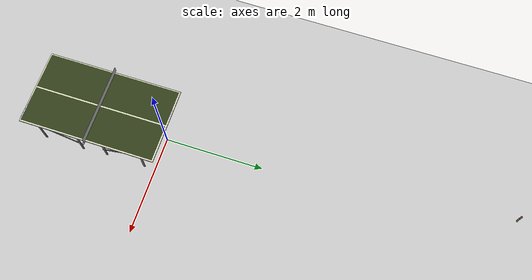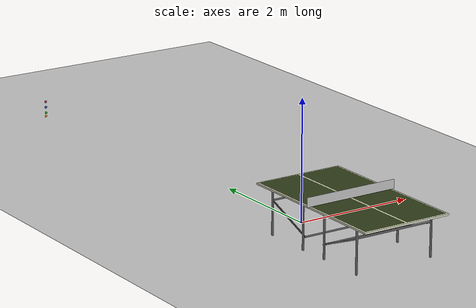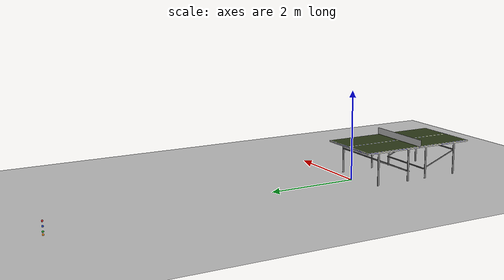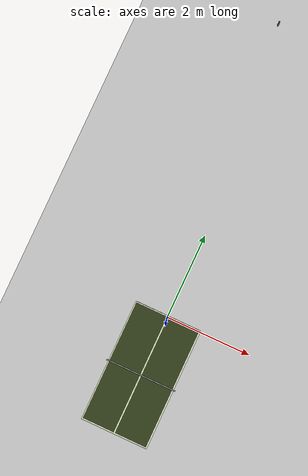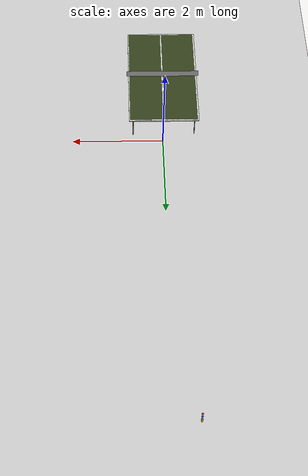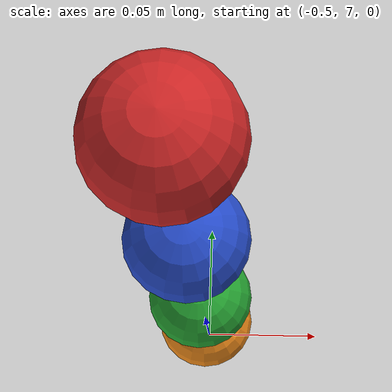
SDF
<?xml version="1.0" ?>
<sdf version="1.4">
  <world name="default">
    <include>
      <uri>model://ground_plane</uri>
    </include>
    <include>
      <uri>model://table</uri>
      <name>ping_pong_table</name>
      <pose>-0.677840 -2.340503 0.0 0 0 0</pose>
    </include>
    <include>
      <uri>model://ping_pong_ball</uri>
      <name>ping_pong_ball</name>
      <pose>-0.5 7.0 0.04 0 0 0</pose>
    </include>
    <include>
      <uri>model://bping_pong_ball</uri>
      <name>blue_ping_pong_ball</name>
      <pose>-0.5 7.0 0.2 0 0 0</pose>
    </include>
    <include>
      <uri>model://gping_pong_ball</uri>
      <name>green_ping_pong_ball</name>
      <pose>-0.5 7.0 0.1 0 0 0</pose>
    </include>
    <include>
      <uri>model://rping_pong_ball</uri>
      <name>red_ping_pong_ball</name>
      <pose>-0.5 7.0 0.3 0 0 0</pose>
    </include>
    <include>
      <uri>model://sun</uri>
      <name>user_spot_light_0</name>
      <pose>0 -2.0 3.77 0 0 0</pose>
    </include>
    <include>
      <uri>model://sun</uri>
      <name>user_spot_light_1</name>
      <pose>0 -0.6 3.77 0 0 0</pose>
    </include>
  </world>
</sdf>

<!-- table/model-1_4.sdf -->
<sdf version="1.4">
  <model name="Ping Pong Table">
    <static>True</static>

    <link name="table">
      <gravity>false</gravity>
       <visual name="visual1">
          <geometry>
            <mesh><uri>file:///home/carlos/.gazebo/models/table/table.dae</uri></mesh>
            <!-->Model taken from https://3dwarehouse.sketchup.com/model.html?id=b34982af1d6e18736b4393ff6e4e0f88 <\!-->
          </geometry>
        </visual>
        <collision name="collision1">
          <geometry>
            <box><size>1.0 1.0 1.0</size></box>
          </geometry>
        </collision>
    </link>

  </model>
</sdf>

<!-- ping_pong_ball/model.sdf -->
<sdf version="1.4">
  <model name="Ping Pong Ball">
    <static>false</static>

    <link name="ball">
      <inertial>
        <mass>0.0027</mass>
        <!-- inertia based on solid sphere 2/5 mr^2 -->
        <inertia>
          <ixx>2.37e-8</ixx>
          <iyy>2.37e-8</iyy>
          <izz>2.37e-8</izz>
          <ixy>0</ixy>
          <ixz>0</ixz>
          <iyz>0</iyz>
        </inertia>
      </inertial>
      <collision name="collision">
        <geometry>
          <sphere>
            <radius>0.0200</radius>
          </sphere>
        </geometry>
	<surface>
	  <bounce>
	    <restitution_coefficient>100.0 </restitution_coefficient>
	    <threshold>0.01</threshold>
	  </bounce>
    <contact>
      <ode>
        <max_vel>500</max_vel>
      </ode>
    </contact>
	</surface>
      </collision>
      <visual name="visual">
        <geometry>
          <sphere>
            <radius>0.0200</radius>
          </sphere>
        </geometry>
        <material>
          <script>
            <uri>file://media/materials/scripts/gazebo.material</uri>
            <name>Gazebo/Orange</name>
          </script>
        </material>
      </visual>
    </link>

  </model>
</sdf>

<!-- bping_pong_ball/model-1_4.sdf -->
<sdf version="1.4">
  <model name="Blue Ping Pong Ball">
    <static>false</static>

    <link name="ball">
      <gravity>false</gravity>
      <inertial>
        <mass>0.0027</mass>
        <!-- inertia based on solid sphere 2/5 mr^2 -->
        <inertia>
          <ixx>2.37e-6</ixx>
          <iyy>2.37e-6</iyy>
          <izz>2.37e-6</izz>
          <ixy>0</ixy>
          <ixz>0</ixz>
          <iyz>0</iyz>
        </inertia>
      </inertial>
      <visual name="visual">
        <geometry>
          <sphere>
            <radius>0.0200</radius>
          </sphere>
        </geometry>
        <material>
          <script>
            <uri>file://media/materials/scripts/gazebo.material</uri>
            <name>Gazebo/Blue</name>
          </script>
        </material>
      </visual>
    </link>

  </model>
</sdf>

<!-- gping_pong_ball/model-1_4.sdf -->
<sdf version="1.4">
  <model name="Green Ping Pong Ball">
    <static>false</static>

    <link name="ball">
      <gravity>false</gravity>
      <inertial>
        <mass>0.0027</mass>
        <!-- inertia based on solid sphere 2/5 mr^2 -->
        <inertia>
          <ixx>2.37e-6</ixx>
          <iyy>2.37e-6</iyy>
          <izz>2.37e-6</izz>
          <ixy>0</ixy>
          <ixz>0</ixz>
          <iyz>0</iyz>
        </inertia>
      </inertial>
      <visual name="visual">
        <geometry>
          <sphere>
            <radius>0.0200</radius>
          </sphere>
        </geometry>
        <material>
          <script>
            <uri>file://media/materials/scripts/gazebo.material</uri>
            <name>Gazebo/Green</name>
          </script>
        </material>
      </visual>
    </link>

  </model>
</sdf>

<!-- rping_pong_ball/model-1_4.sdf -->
<sdf version="1.4">
  <model name="Red Ping Pong Ball">
    <static>false</static>

    <link name="ball">
      <gravity>false</gravity>
      <inertial>
        <mass>0.0027</mass>
        <!-- inertia based on solid sphere 2/5 mr^2 -->
        <inertia>
          <ixx>2.37e-6</ixx>
          <iyy>2.37e-6</iyy>
          <izz>2.37e-6</izz>
          <ixy>0</ixy>
          <ixz>0</ixz>
          <iyz>0</iyz>
        </inertia>
      </inertial>
      <visual name="visual">
        <geometry>
          <sphere>
            <radius>0.0200</radius>
          </sphere>
        </geometry>
        <material>
          <script>
            <uri>file://media/materials/scripts/gazebo.material</uri>
            <name>Gazebo/Red</name>
          </script>
        </material>
      </visual>
    </link>

  </model>
</sdf>
